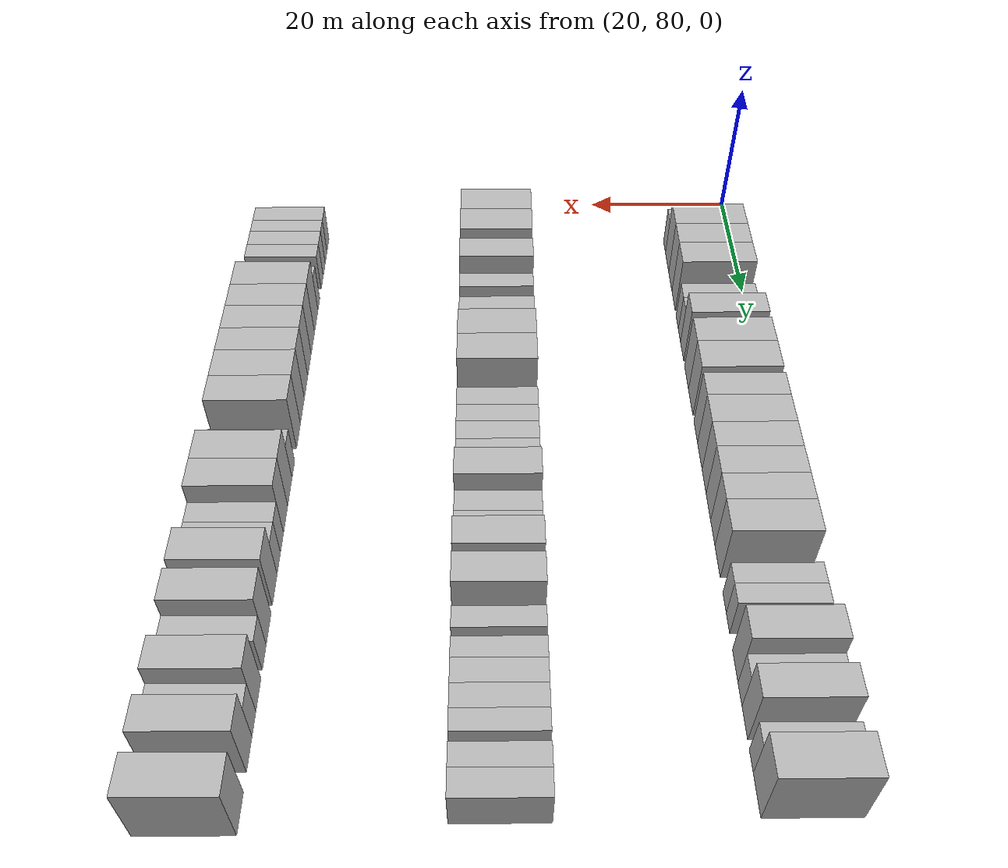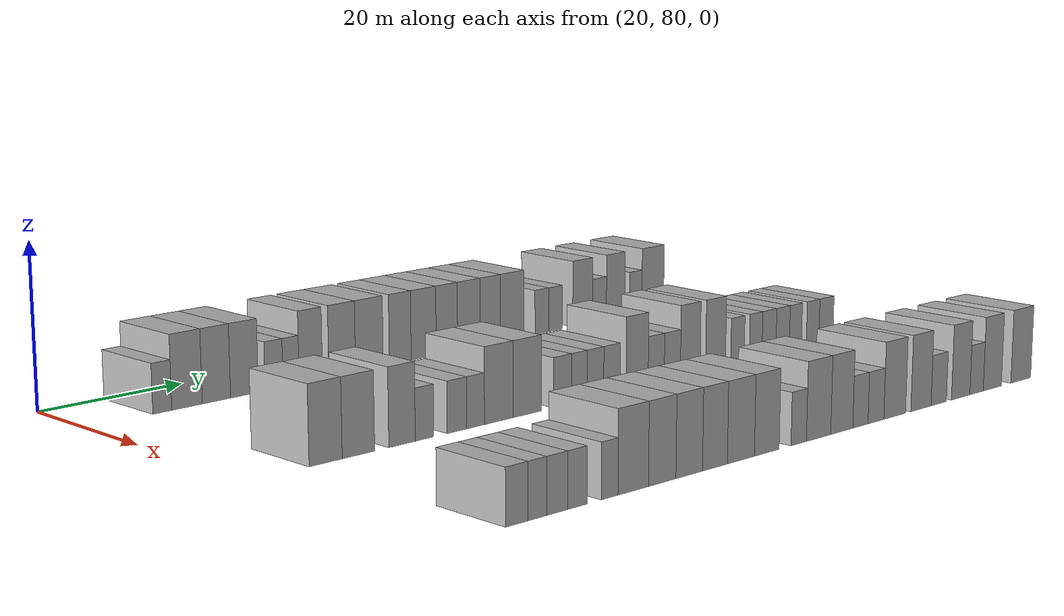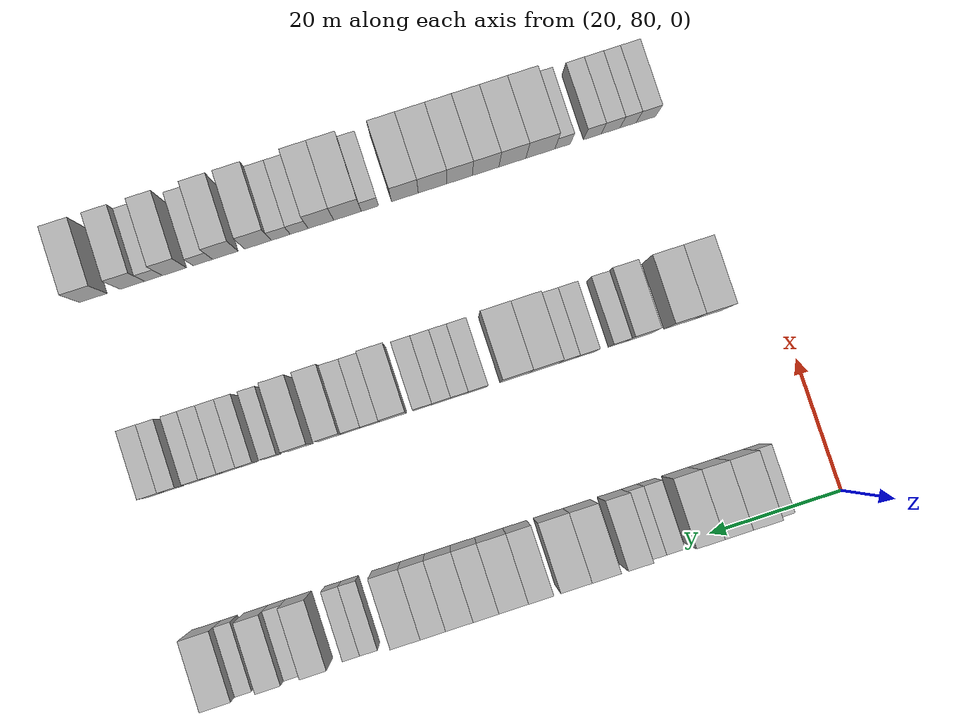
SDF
<sdf version="1.6">
 <world name="default">
  <model name="building_93">
   <static>1</static>
   <pose>25.0000 90.2426 0 0.000000 0.000000 0.000000</pose>
   <link name="link">
    <pose>0 0 3.00 0 0 0</pose>
    <collision name="collision"><geometry><box><size>10.0000 2.6197 6.0000</size></box></geometry></collision>
    <visual name="visual">
     <cast_shadows>0</cast_shadows>
     <geometry><box><size>10.0000 2.6197 6.0000</size></box></geometry>
     <material>
      <script>
       <uri>model://HANNAS_wall/materials/scripts</uri>
       <uri>model://HANNAS_wall/materials/textures</uri>
       <name>vrc/HANNAS_wall</name>
      </script>
     </material>
    </visual>
   </link>
  </model>
  <model name="building_94">
   <static>1</static>
   <pose>25.0000 93.7012 0 0.000000 0.000000 0.000000</pose>
   <link name="link">
    <pose>0 0 4.50 0 0 0</pose>
    <collision name="collision"><geometry><box><size>10.0000 4.2974 9.0000</size></box></geometry></collision>
    <visual name="visual">
     <cast_shadows>0</cast_shadows>
     <geometry><box><size>10.0000 4.2974 9.0000</size></box></geometry>
     <material>
      <script>
       <uri>model://HANNAS_wall/materials/scripts</uri>
       <uri>model://HANNAS_wall/materials/textures</uri>
       <name>vrc/HANNAS_wall</name>
      </script>
     </material>
    </visual>
   </link>
  </model>
  <model name="building_95">
   <static>1</static>
   <pose>25.0000 97.8898 0 0.000000 0.000000 0.000000</pose>
   <link name="link">
    <pose>0 0 4.50 0 0 0</pose>
    <collision name="collision"><geometry><box><size>10.0000 4.0798 9.0000</size></box></geometry></collision>
    <visual name="visual">
     <cast_shadows>0</cast_shadows>
     <geometry><box><size>10.0000 4.0798 9.0000</size></box></geometry>
     <material>
      <script>
       <uri>model://HANNAS_wall/materials/scripts</uri>
       <uri>model://HANNAS_wall/materials/textures</uri>
       <name>vrc/HANNAS_wall</name>
      </script>
     </material>
    </visual>
   </link>
  </model>
  <model name="building_96">
   <static>1</static>
   <pose>25.0000 101.9727 0 0.000000 0.000000 0.000000</pose>
   <link name="link">
    <pose>0 0 4.50 0 0 0</pose>
    <collision name="collision"><geometry><box><size>10.0000 4.0860 9.0000</size></box></geometry></collision>
    <visual name="visual">
     <cast_shadows>0</cast_shadows>
     <geometry><box><size>10.0000 4.0860 9.0000</size></box></geometry>
     <material>
      <script>
       <uri>model://HANNAS_wall/materials/scripts</uri>
       <uri>model://HANNAS_wall/materials/textures</uri>
       <name>vrc/HANNAS_wall</name>
      </script>
     </material>
    </visual>
   </link>
  </model>
  <model name="building_97">
   <static>1</static>
   <pose>25.0000 106.3597 0 0.000000 0.000000 0.000000</pose>
   <link name="link">
    <pose>0 0 3.00 0 0 0</pose>
    <collision name="collision"><geometry><box><size>10.0000 2.6880 6.0000</size></box></geometry></collision>
    <visual name="visual">
     <cast_shadows>0</cast_shadows>
     <geometry><box><size>10.0000 2.6880 6.0000</size></box></geometry>
     <material>
      <script>
       <uri>model://HANNAS_wall/materials/scripts</uri>
       <uri>model://HANNAS_wall/materials/textures</uri>
       <name>vrc/HANNAS_wall</name>
      </script>
     </material>
    </visual>
   </link>
  </model>
  <model name="building_98">
   <static>1</static>
   <pose>25.0000 108.9286 0 0.000000 0.000000 0.000000</pose>
   <link name="link">
    <pose>0 0 3.00 0 0 0</pose>
    <collision name="collision"><geometry><box><size>10.0000 2.4498 6.0000</size></box></geometry></collision>
    <visual name="visual">
     <cast_shadows>0</cast_shadows>
     <geometry><box><size>10.0000 2.4498 6.0000</size></box></geometry>
     <material>
      <script>
       <uri>model://HANNAS_wall/materials/scripts</uri>
       <uri>model://HANNAS_wall/materials/textures</uri>
       <name>vrc/HANNAS_wall</name>
      </script>
     </material>
    </visual>
   </link>
  </model>
  <model name="building_99">
   <static>1</static>
   <pose>25.0000 111.9615 0 0.000000 0.000000 0.000000</pose>
   <link name="link">
    <pose>0 0 4.50 0 0 0</pose>
    <collision name="collision"><geometry><box><size>10.0000 3.6160 9.0000</size></box></geometry></collision>
    <visual name="visual">
     <cast_shadows>0</cast_shadows>
     <geometry><box><size>10.0000 3.6160 9.0000</size></box></geometry>
     <material>
      <script>
       <uri>model://HANNAS_wall/materials/scripts</uri>
       <uri>model://HANNAS_wall/materials/textures</uri>
       <name>vrc/HANNAS_wall</name>
      </script>
     </material>
    </visual>
   </link>
  </model>
  <model name="building_100">
   <static>1</static>
   <pose>25.0000 116.8692 0 0.000000 0.000000 0.000000</pose>
   <link name="link">
    <pose>0 0 4.50 0 0 0</pose>
    <collision name="collision"><geometry><box><size>10.0000 4.1995 9.0000</size></box></geometry></collision>
    <visual name="visual">
     <cast_shadows>0</cast_shadows>
     <geometry><box><size>10.0000 4.1995 9.0000</size></box></geometry>
     <material>
      <script>
       <uri>model://HANNAS_wall/materials/scripts</uri>
       <uri>model://HANNAS_wall/materials/textures</uri>
       <name>vrc/HANNAS_wall</name>
      </script>
     </material>
    </visual>
   </link>
  </model>
  <model name="building_101">
   <static>1</static>
   <pose>25.0000 121.2153 0 0.000000 0.000000 0.000000</pose>
   <link name="link">
    <pose>0 0 4.50 0 0 0</pose>
    <collision name="collision"><geometry><box><size>10.0000 4.4926 9.0000</size></box></geometry></collision>
    <visual name="visual">
     <cast_shadows>0</cast_shadows>
     <geometry><box><size>10.0000 4.4926 9.0000</size></box></geometry>
     <material>
      <script>
       <uri>model://HANNAS_wall/materials/scripts</uri>
       <uri>model://HANNAS_wall/materials/textures</uri>
       <name>vrc/HANNAS_wall</name>
      </script>
     </material>
    </visual>
   </link>
  </model>
  <model name="building_102">
   <static>1</static>
   <pose>25.0000 126.2646 0 0.000000 0.000000 0.000000</pose>
   <link name="link">
    <pose>0 0 4.50 0 0 0</pose>
    <collision name="collision"><geometry><box><size>10.0000 3.6060 9.0000</size></box></geometry></collision>
    <visual name="visual">
     <cast_shadows>0</cast_shadows>
     <geometry><box><size>10.0000 3.6060 9.0000</size></box></geometry>
     <material>
      <script>
       <uri>model://HANNAS_wall/materials/scripts</uri>
       <uri>model://HANNAS_wall/materials/textures</uri>
       <name>vrc/HANNAS_wall</name>
      </script>
     </material>
    </visual>
   </link>
  </model>
  <model name="building_103">
   <static>1</static>
   <pose>25.0000 130.1817 0 0.000000 0.000000 0.000000</pose>
   <link name="link">
    <pose>0 0 4.50 0 0 0</pose>
    <collision name="collision"><geometry><box><size>10.0000 4.2282 9.0000</size></box></geometry></collision>
    <visual name="visual">
     <cast_shadows>0</cast_shadows>
     <geometry><box><size>10.0000 4.2282 9.0000</size></box></geometry>
     <material>
      <script>
       <uri>model://HANNAS_wall/materials/scripts</uri>
       <uri>model://HANNAS_wall/materials/textures</uri>
       <name>vrc/HANNAS_wall</name>
      </script>
     </material>
    </visual>
   </link>
  </model>
  <model name="building_104">
   <static>1</static>
   <pose>25.0000 134.1335 0 0.000000 0.000000 0.000000</pose>
   <link name="link">
    <pose>0 0 4.50 0 0 0</pose>
    <collision name="collision"><geometry><box><size>10.0000 3.6755 9.0000</size></box></geometry></collision>
    <visual name="visual">
     <cast_shadows>0</cast_shadows>
     <geometry><box><size>10.0000 3.6755 9.0000</size></box></geometry>
     <material>
      <script>
       <uri>model://HANNAS_wall/materials/scripts</uri>
       <uri>model://HANNAS_wall/materials/textures</uri>
       <name>vrc/HANNAS_wall</name>
      </script>
     </material>
    </visual>
   </link>
  </model>
  <model name="building_105">
   <static>1</static>
   <pose>25.0000 137.9393 0 0.000000 0.000000 0.000000</pose>
   <link name="link">
    <pose>0 0 4.50 0 0 0</pose>
    <collision name="collision"><geometry><box><size>10.0000 3.9360 9.0000</size></box></geometry></collision>
    <visual name="visual">
     <cast_shadows>0</cast_shadows>
     <geometry><box><size>10.0000 3.9360 9.0000</size></box></geometry>
     <material>
      <script>
       <uri>model://HANNAS_wall/materials/scripts</uri>
       <uri>model://HANNAS_wall/materials/textures</uri>
       <name>vrc/HANNAS_wall</name>
      </script>
     </material>
    </visual>
   </link>
  </model>
  <model name="building_106">
   <static>1</static>
   <pose>25.0000 141.7201 0 0.000000 0.000000 0.000000</pose>
   <link name="link">
    <pose>0 0 4.50 0 0 0</pose>
    <collision name="collision"><geometry><box><size>10.0000 3.6256 9.0000</size></box></geometry></collision>
    <visual name="visual">
     <cast_shadows>0</cast_shadows>
     <geometry><box><size>10.0000 3.6256 9.0000</size></box></geometry>
     <material>
      <script>
       <uri>model://HANNAS_wall/materials/scripts</uri>
       <uri>model://HANNAS_wall/materials/textures</uri>
       <name>vrc/HANNAS_wall</name>
      </script>
     </material>
    </visual>
   </link>
  </model>
  <model name="building_107">
   <static>1</static>
   <pose>25.0000 145.6723 0 0.000000 0.000000 0.000000</pose>
   <link name="link">
    <pose>0 0 4.50 0 0 0</pose>
    <collision name="collision"><geometry><box><size>10.0000 4.2788 9.0000</size></box></geometry></collision>
    <visual name="visual">
     <cast_shadows>0</cast_shadows>
     <geometry><box><size>10.0000 4.2788 9.0000</size></box></geometry>
     <material>
      <script>
       <uri>model://HANNAS_wall/materials/scripts</uri>
       <uri>model://HANNAS_wall/materials/textures</uri>
       <name>vrc/HANNAS_wall</name>
      </script>
     </material>
    </visual>
   </link>
  </model>
  <model name="building_108">
   <static>1</static>
   <pose>25.0000 151.1024 0 0.000000 0.000000 0.000000</pose>
   <link name="link">
    <pose>0 0 3.00 0 0 0</pose>
    <collision name="collision"><geometry><box><size>10.0000 2.5815 6.0000</size></box></geometry></collision>
    <visual name="visual">
     <cast_shadows>0</cast_shadows>
     <geometry><box><size>10.0000 2.5815 6.0000</size></box></geometry>
     <material>
      <script>
       <uri>model://HANNAS_wall/materials/scripts</uri>
       <uri>model://HANNAS_wall/materials/textures</uri>
       <name>vrc/HANNAS_wall</name>
      </script>
     </material>
    </visual>
   </link>
  </model>
  <model name="building_109">
   <static>1</static>
   <pose>25.0000 153.6370 0 0.000000 0.000000 0.000000</pose>
   <link name="link">
    <pose>0 0 3.00 0 0 0</pose>
    <collision name="collision"><geometry><box><size>10.0000 2.4877 6.0000</size></box></geometry></collision>
    <visual name="visual">
     <cast_shadows>0</cast_shadows>
     <geometry><box><size>10.0000 2.4877 6.0000</size></box></geometry>
     <material>
      <script>
       <uri>model://HANNAS_wall/materials/scripts</uri>
       <uri>model://HANNAS_wall/materials/textures</uri>
       <name>vrc/HANNAS_wall</name>
      </script>
     </material>
    </visual>
   </link>
  </model>
  <model name="building_110">
   <static>1</static>
   <pose>25.0000 158.7950 0 0.000000 0.000000 0.000000</pose>
   <link name="link">
    <pose>0 0 4.50 0 0 0</pose>
    <collision name="collision"><geometry><box><size>10.0000 3.8283 9.0000</size></box></geometry></collision>
    <visual name="visual">
     <cast_shadows>0</cast_shadows>
     <geometry><box><size>10.0000 3.8283 9.0000</size></box></geometry>
     <material>
      <script>
       <uri>model://HANNAS_wall/materials/scripts</uri>
       <uri>model://HANNAS_wall/materials/textures</uri>
       <name>vrc/HANNAS_wall</name>
      </script>
     </material>
    </visual>
   </link>
  </model>
  <model name="building_111">
   <static>1</static>
   <pose>25.0000 162.0467 0 0.000000 0.000000 0.000000</pose>
   <link name="link">
    <pose>0 0 3.00 0 0 0</pose>
    <collision name="collision"><geometry><box><size>10.0000 2.6752 6.0000</size></box></geometry></collision>
    <visual name="visual">
     <cast_shadows>0</cast_shadows>
     <geometry><box><size>10.0000 2.6752 6.0000</size></box></geometry>
     <material>
      <script>
       <uri>model://HANNAS_wall/materials/scripts</uri>
       <uri>model://HANNAS_wall/materials/textures</uri>
       <name>vrc/HANNAS_wall</name>
      </script>
     </material>
    </visual>
   </link>
  </model>
  <model name="building_112">
   <static>1</static>
   <pose>25.0000 165.1947 0 0.000000 0.000000 0.000000</pose>
   <link name="link">
    <pose>0 0 4.50 0 0 0</pose>
    <collision name="collision"><geometry><box><size>10.0000 3.6208 9.0000</size></box></geometry></collision>
    <visual name="visual">
     <cast_shadows>0</cast_shadows>
     <geometry><box><size>10.0000 3.6208 9.0000</size></box></geometry>
     <material>
      <script>
       <uri>model://HANNAS_wall/materials/scripts</uri>
       <uri>model://HANNAS_wall/materials/textures</uri>
       <name>vrc/HANNAS_wall</name>
      </script>
     </material>
    </visual>
   </link>
  </model>
  <model name="building_113">
   <static>1</static>
   <pose>25.0000 169.2252 0 0.000000 0.000000 0.000000</pose>
   <link name="link">
    <pose>0 0 3.00 0 0 0</pose>
    <collision name="collision"><geometry><box><size>10.0000 2.4401 6.0000</size></box></geometry></collision>
    <visual name="visual">
     <cast_shadows>0</cast_shadows>
     <geometry><box><size>10.0000 2.4401 6.0000</size></box></geometry>
     <material>
      <script>
       <uri>model://HANNAS_wall/materials/scripts</uri>
       <uri>model://HANNAS_wall/materials/textures</uri>
       <name>vrc/HANNAS_wall</name>
      </script>
     </material>
    </visual>
   </link>
  </model>
  <model name="building_114">
   <static>1</static>
   <pose>25.0000 172.6649 0 0.000000 0.000000 0.000000</pose>
   <link name="link">
    <pose>0 0 4.50 0 0 0</pose>
    <collision name="collision"><geometry><box><size>10.0000 4.4392 9.0000</size></box></geometry></collision>
    <visual name="visual">
     <cast_shadows>0</cast_shadows>
     <geometry><box><size>10.0000 4.4392 9.0000</size></box></geometry>
     <material>
      <script>
       <uri>model://HANNAS_wall/materials/scripts</uri>
       <uri>model://HANNAS_wall/materials/textures</uri>
       <name>vrc/HANNAS_wall</name>
      </script>
     </material>
    </visual>
   </link>
  </model>
  <model name="building_228">
   <static>1</static>
   <pose>55.0000 90.1496 0 0.000000 0.000000 0.000000</pose>
   <link name="link">
    <pose>0 0 4.50 0 0 0</pose>
    <collision name="collision"><geometry><box><size>10.0000 4.4806 9.0000</size></box></geometry></collision>
    <visual name="visual">
     <cast_shadows>0</cast_shadows>
     <geometry><box><size>10.0000 4.4806 9.0000</size></box></geometry>
     <material>
      <script>
       <uri>model://HANNAS_wall/materials/scripts</uri>
       <uri>model://HANNAS_wall/materials/textures</uri>
       <name>vrc/HANNAS_wall</name>
      </script>
     </material>
    </visual>
   </link>
  </model>
  <model name="building_229">
   <static>1</static>
   <pose>55.0000 94.6384 0 0.000000 0.000000 0.000000</pose>
   <link name="link">
    <pose>0 0 4.50 0 0 0</pose>
    <collision name="collision"><geometry><box><size>10.0000 4.4970 9.0000</size></box></geometry></collision>
    <visual name="visual">
     <cast_shadows>0</cast_shadows>
     <geometry><box><size>10.0000 4.4970 9.0000</size></box></geometry>
     <material>
      <script>
       <uri>model://HANNAS_wall/materials/scripts</uri>
       <uri>model://HANNAS_wall/materials/textures</uri>
       <name>vrc/HANNAS_wall</name>
      </script>
     </material>
    </visual>
   </link>
  </model>
  <model name="building_230">
   <static>1</static>
   <pose>55.0000 100.7871 0 0.000000 0.000000 0.000000</pose>
   <link name="link">
    <pose>0 0 4.50 0 0 0</pose>
    <collision name="collision"><geometry><box><size>10.0000 3.8002 9.0000</size></box></geometry></collision>
    <visual name="visual">
     <cast_shadows>0</cast_shadows>
     <geometry><box><size>10.0000 3.8002 9.0000</size></box></geometry>
     <material>
      <script>
       <uri>model://HANNAS_wall/materials/scripts</uri>
       <uri>model://HANNAS_wall/materials/textures</uri>
       <name>vrc/HANNAS_wall</name>
      </script>
     </material>
    </visual>
   </link>
  </model>
  <model name="building_231">
   <static>1</static>
   <pose>55.0000 104.0326 0 0.000000 0.000000 0.000000</pose>
   <link name="link">
    <pose>0 0 3.00 0 0 0</pose>
    <collision name="collision"><geometry><box><size>10.0000 2.6907 6.0000</size></box></geometry></collision>
    <visual name="visual">
     <cast_shadows>0</cast_shadows>
     <geometry><box><size>10.0000 2.6907 6.0000</size></box></geometry>
     <material>
      <script>
       <uri>model://HANNAS_wall/materials/scripts</uri>
       <uri>model://HANNAS_wall/materials/textures</uri>
       <name>vrc/HANNAS_wall</name>
      </script>
     </material>
    </visual>
   </link>
  </model>
  <model name="building_232">
   <static>1</static>
   <pose>55.0000 108.8431 0 0.000000 0.000000 0.000000</pose>
   <link name="link">
    <pose>0 0 3.00 0 0 0</pose>
    <collision name="collision"><geometry><box><size>10.0000 2.9304 6.0000</size></box></geometry></collision>
    <visual name="visual">
     <cast_shadows>0</cast_shadows>
     <geometry><box><size>10.0000 2.9304 6.0000</size></box></geometry>
     <material>
      <script>
       <uri>model://HANNAS_wall/materials/scripts</uri>
       <uri>model://HANNAS_wall/materials/textures</uri>
       <name>vrc/HANNAS_wall</name>
      </script>
     </material>
    </visual>
   </link>
  </model>
  <model name="building_233">
   <static>1</static>
   <pose>55.0000 111.6574 0 0.000000 0.000000 0.000000</pose>
   <link name="link">
    <pose>0 0 3.00 0 0 0</pose>
    <collision name="collision"><geometry><box><size>10.0000 2.6982 6.0000</size></box></geometry></collision>
    <visual name="visual">
     <cast_shadows>0</cast_shadows>
     <geometry><box><size>10.0000 2.6982 6.0000</size></box></geometry>
     <material>
      <script>
       <uri>model://HANNAS_wall/materials/scripts</uri>
       <uri>model://HANNAS_wall/materials/textures</uri>
       <name>vrc/HANNAS_wall</name>
      </script>
     </material>
    </visual>
   </link>
  </model>
  <model name="building_234">
   <static>1</static>
   <pose>55.0000 115.2255 0 0.000000 0.000000 0.000000</pose>
   <link name="link">
    <pose>0 0 4.50 0 0 0</pose>
    <collision name="collision"><geometry><box><size>10.0000 4.4379 9.0000</size></box></geometry></collision>
    <visual name="visual">
     <cast_shadows>0</cast_shadows>
     <geometry><box><size>10.0000 4.4379 9.0000</size></box></geometry>
     <material>
      <script>
       <uri>model://HANNAS_wall/materials/scripts</uri>
       <uri>model://HANNAS_wall/materials/textures</uri>
       <name>vrc/HANNAS_wall</name>
      </script>
     </material>
    </visual>
   </link>
  </model>
  <model name="building_235">
   <static>1</static>
   <pose>55.0000 119.6730 0 0.000000 0.000000 0.000000</pose>
   <link name="link">
    <pose>0 0 4.50 0 0 0</pose>
    <collision name="collision"><geometry><box><size>10.0000 4.4572 9.0000</size></box></geometry></collision>
    <visual name="visual">
     <cast_shadows>0</cast_shadows>
     <geometry><box><size>10.0000 4.4572 9.0000</size></box></geometry>
     <material>
      <script>
       <uri>model://HANNAS_wall/materials/scripts</uri>
       <uri>model://HANNAS_wall/materials/textures</uri>
       <name>vrc/HANNAS_wall</name>
      </script>
     </material>
    </visual>
   </link>
  </model>
  <model name="building_236">
   <static>1</static>
   <pose>55.0000 125.3591 0 0.000000 0.000000 0.000000</pose>
   <link name="link">
    <pose>0 0 3.00 0 0 0</pose>
    <collision name="collision"><geometry><box><size>10.0000 2.9148 6.0000</size></box></geometry></collision>
    <visual name="visual">
     <cast_shadows>0</cast_shadows>
     <geometry><box><size>10.0000 2.9148 6.0000</size></box></geometry>
     <material>
      <script>
       <uri>model://HANNAS_wall/materials/scripts</uri>
       <uri>model://HANNAS_wall/materials/textures</uri>
       <name>vrc/HANNAS_wall</name>
      </script>
     </material>
    </visual>
   </link>
  </model>
  <model name="building_237">
   <static>1</static>
   <pose>55.0000 128.1141 0 0.000000 0.000000 0.000000</pose>
   <link name="link">
    <pose>0 0 3.00 0 0 0</pose>
    <collision name="collision"><geometry><box><size>10.0000 2.5953 6.0000</size></box></geometry></collision>
    <visual name="visual">
     <cast_shadows>0</cast_shadows>
     <geometry><box><size>10.0000 2.5953 6.0000</size></box></geometry>
     <material>
      <script>
       <uri>model://HANNAS_wall/materials/scripts</uri>
       <uri>model://HANNAS_wall/materials/textures</uri>
       <name>vrc/HANNAS_wall</name>
      </script>
     </material>
    </visual>
   </link>
  </model>
  <model name="building_238">
   <static>1</static>
   <pose>55.0000 130.8022 0 0.000000 0.000000 0.000000</pose>
   <link name="link">
    <pose>0 0 3.00 0 0 0</pose>
    <collision name="collision"><geometry><box><size>10.0000 2.7808 6.0000</size></box></geometry></collision>
    <visual name="visual">
     <cast_shadows>0</cast_shadows>
     <geometry><box><size>10.0000 2.7808 6.0000</size></box></geometry>
     <material>
      <script>
       <uri>model://HANNAS_wall/materials/scripts</uri>
       <uri>model://HANNAS_wall/materials/textures</uri>
       <name>vrc/HANNAS_wall</name>
      </script>
     </material>
    </visual>
   </link>
  </model>
  <model name="building_239">
   <static>1</static>
   <pose>55.0000 133.6105 0 0.000000 0.000000 0.000000</pose>
   <link name="link">
    <pose>0 0 3.00 0 0 0</pose>
    <collision name="collision"><geometry><box><size>10.0000 2.8358 6.0000</size></box></geometry></collision>
    <visual name="visual">
     <cast_shadows>0</cast_shadows>
     <geometry><box><size>10.0000 2.8358 6.0000</size></box></geometry>
     <material>
      <script>
       <uri>model://HANNAS_wall/materials/scripts</uri>
       <uri>model://HANNAS_wall/materials/textures</uri>
       <name>vrc/HANNAS_wall</name>
      </script>
     </material>
    </visual>
   </link>
  </model>
  <model name="building_240">
   <static>1</static>
   <pose>55.0000 137.9510 0 0.000000 0.000000 0.000000</pose>
   <link name="link">
    <pose>0 0 4.50 0 0 0</pose>
    <collision name="collision"><geometry><box><size>10.0000 3.8452 9.0000</size></box></geometry></collision>
    <visual name="visual">
     <cast_shadows>0</cast_shadows>
     <geometry><box><size>10.0000 3.8452 9.0000</size></box></geometry>
     <material>
      <script>
       <uri>model://HANNAS_wall/materials/scripts</uri>
       <uri>model://HANNAS_wall/materials/textures</uri>
       <name>vrc/HANNAS_wall</name>
      </script>
     </material>
    </visual>
   </link>
  </model>
  <model name="building_241">
   <static>1</static>
   <pose>55.0000 141.3032 0 0.000000 0.000000 0.000000</pose>
   <link name="link">
    <pose>0 0 3.00 0 0 0</pose>
    <collision name="collision"><geometry><box><size>10.0000 2.8592 6.0000</size></box></geometry></collision>
    <visual name="visual">
     <cast_shadows>0</cast_shadows>
     <geometry><box><size>10.0000 2.8592 6.0000</size></box></geometry>
     <material>
      <script>
       <uri>model://HANNAS_wall/materials/scripts</uri>
       <uri>model://HANNAS_wall/materials/textures</uri>
       <name>vrc/HANNAS_wall</name>
      </script>
     </material>
    </visual>
   </link>
  </model>
  <model name="building_242">
   <static>1</static>
   <pose>55.0000 144.1785 0 0.000000 0.000000 0.000000</pose>
   <link name="link">
    <pose>0 0 3.00 0 0 0</pose>
    <collision name="collision"><geometry><box><size>10.0000 2.8914 6.0000</size></box></geometry></collision>
    <visual name="visual">
     <cast_shadows>0</cast_shadows>
     <geometry><box><size>10.0000 2.8914 6.0000</size></box></geometry>
     <material>
      <script>
       <uri>model://HANNAS_wall/materials/scripts</uri>
       <uri>model://HANNAS_wall/materials/textures</uri>
       <name>vrc/HANNAS_wall</name>
      </script>
     </material>
    </visual>
   </link>
  </model>
  <model name="building_243">
   <static>1</static>
   <pose>55.0000 147.4254 0 0.000000 0.000000 0.000000</pose>
   <link name="link">
    <pose>0 0 4.50 0 0 0</pose>
    <collision name="collision"><geometry><box><size>10.0000 3.6023 9.0000</size></box></geometry></collision>
    <visual name="visual">
     <cast_shadows>0</cast_shadows>
     <geometry><box><size>10.0000 3.6023 9.0000</size></box></geometry>
     <material>
      <script>
       <uri>model://HANNAS_wall/materials/scripts</uri>
       <uri>model://HANNAS_wall/materials/textures</uri>
       <name>vrc/HANNAS_wall</name>
      </script>
     </material>
    </visual>
   </link>
  </model>
  <model name="building_244">
   <static>1</static>
   <pose>55.0000 152.0876 0 0.000000 0.000000 0.000000</pose>
   <link name="link">
    <pose>0 0 4.50 0 0 0</pose>
    <collision name="collision"><geometry><box><size>10.0000 3.7222 9.0000</size></box></geometry></collision>
    <visual name="visual">
     <cast_shadows>0</cast_shadows>
     <geometry><box><size>10.0000 3.7222 9.0000</size></box></geometry>
     <material>
      <script>
       <uri>model://HANNAS_wall/materials/scripts</uri>
       <uri>model://HANNAS_wall/materials/textures</uri>
       <name>vrc/HANNAS_wall</name>
      </script>
     </material>
    </visual>
   </link>
  </model>
  <model name="building_245">
   <static>1</static>
   <pose>55.0000 156.2268 0 0.000000 0.000000 0.000000</pose>
   <link name="link">
    <pose>0 0 3.00 0 0 0</pose>
    <collision name="collision"><geometry><box><size>10.0000 2.5563 6.0000</size></box></geometry></collision>
    <visual name="visual">
     <cast_shadows>0</cast_shadows>
     <geometry><box><size>10.0000 2.5563 6.0000</size></box></geometry>
     <material>
      <script>
       <uri>model://HANNAS_wall/materials/scripts</uri>
       <uri>model://HANNAS_wall/materials/textures</uri>
       <name>vrc/HANNAS_wall</name>
      </script>
     </material>
    </visual>
   </link>
  </model>
  <model name="building_246">
   <static>1</static>
   <pose>55.0000 159.7263 0 0.000000 0.000000 0.000000</pose>
   <link name="link">
    <pose>0 0 3.00 0 0 0</pose>
    <collision name="collision"><geometry><box><size>10.0000 2.4425 6.0000</size></box></geometry></collision>
    <visual name="visual">
     <cast_shadows>0</cast_shadows>
     <geometry><box><size>10.0000 2.4425 6.0000</size></box></geometry>
     <material>
      <script>
       <uri>model://HANNAS_wall/materials/scripts</uri>
       <uri>model://HANNAS_wall/materials/textures</uri>
       <name>vrc/HANNAS_wall</name>
      </script>
     </material>
    </visual>
   </link>
  </model>
  <model name="building_247">
   <static>1</static>
   <pose>55.0000 162.3190 0 0.000000 0.000000 0.000000</pose>
   <link name="link">
    <pose>0 0 3.00 0 0 0</pose>
    <collision name="collision"><geometry><box><size>10.0000 2.7430 6.0000</size></box></geometry></collision>
    <visual name="visual">
     <cast_shadows>0</cast_shadows>
     <geometry><box><size>10.0000 2.7430 6.0000</size></box></geometry>
     <material>
      <script>
       <uri>model://HANNAS_wall/materials/scripts</uri>
       <uri>model://HANNAS_wall/materials/textures</uri>
       <name>vrc/HANNAS_wall</name>
      </script>
     </material>
    </visual>
   </link>
  </model>
  <model name="building_248">
   <static>1</static>
   <pose>55.0000 165.0215 0 0.000000 0.000000 0.000000</pose>
   <link name="link">
    <pose>0 0 3.00 0 0 0</pose>
    <collision name="collision"><geometry><box><size>10.0000 2.6620 6.0000</size></box></geometry></collision>
    <visual name="visual">
     <cast_shadows>0</cast_shadows>
     <geometry><box><size>10.0000 2.6620 6.0000</size></box></geometry>
     <material>
      <script>
       <uri>model://HANNAS_wall/materials/scripts</uri>
       <uri>model://HANNAS_wall/materials/textures</uri>
       <name>vrc/HANNAS_wall</name>
      </script>
     </material>
    </visual>
   </link>
  </model>
  <model name="building_249">
   <static>1</static>
   <pose>55.0000 167.5645 0 0.000000 0.000000 0.000000</pose>
   <link name="link">
    <pose>0 0 3.00 0 0 0</pose>
    <collision name="collision"><geometry><box><size>10.0000 2.4240 6.0000</size></box></geometry></collision>
    <visual name="visual">
     <cast_shadows>0</cast_shadows>
     <geometry><box><size>10.0000 2.4240 6.0000</size></box></geometry>
     <material>
      <script>
       <uri>model://HANNAS_wall/materials/scripts</uri>
       <uri>model://HANNAS_wall/materials/textures</uri>
       <name>vrc/HANNAS_wall</name>
      </script>
     </material>
    </visual>
   </link>
  </model>
  <model name="building_250">
   <static>1</static>
   <pose>55.0000 171.0565 0 0.000000 0.000000 0.000000</pose>
   <link name="link">
    <pose>0 0 3.00 0 0 0</pose>
    <collision name="collision"><geometry><box><size>10.0000 2.5600 6.0000</size></box></geometry></collision>
    <visual name="visual">
     <cast_shadows>0</cast_shadows>
     <geometry><box><size>10.0000 2.5600 6.0000</size></box></geometry>
     <material>
      <script>
       <uri>model://HANNAS_wall/materials/scripts</uri>
       <uri>model://HANNAS_wall/materials/textures</uri>
       <name>vrc/HANNAS_wall</name>
      </script>
     </material>
    </visual>
   </link>
  </model>
  <model name="building_251">
   <static>1</static>
   <pose>55.0000 173.7946 0 0.000000 0.000000 0.000000</pose>
   <link name="link">
    <pose>0 0 3.00 0 0 0</pose>
    <collision name="collision"><geometry><box><size>10.0000 2.9161 6.0000</size></box></geometry></collision>
    <visual name="visual">
     <cast_shadows>0</cast_shadows>
     <geometry><box><size>10.0000 2.9161 6.0000</size></box></geometry>
     <material>
      <script>
       <uri>model://HANNAS_wall/materials/scripts</uri>
       <uri>model://HANNAS_wall/materials/textures</uri>
       <name>vrc/HANNAS_wall</name>
      </script>
     </material>
    </visual>
   </link>
  </model>
  <model name="building_365">
   <static>1</static>
   <pose>85.0000 89.5712 0 0.000000 0.000000 0.000000</pose>
   <link name="link">
    <pose>0 0 3.00 0 0 0</pose>
    <collision name="collision"><geometry><box><size>10.0000 2.9950 6.0000</size></box></geometry></collision>
    <visual name="visual">
     <cast_shadows>0</cast_shadows>
     <geometry><box><size>10.0000 2.9950 6.0000</size></box></geometry>
     <material>
      <script>
       <uri>model://HANNAS_wall/materials/scripts</uri>
       <uri>model://HANNAS_wall/materials/textures</uri>
       <name>vrc/HANNAS_wall</name>
      </script>
     </material>
    </visual>
   </link>
  </model>
  <model name="building_366">
   <static>1</static>
   <pose>85.0000 92.3243 0 0.000000 0.000000 0.000000</pose>
   <link name="link">
    <pose>0 0 3.00 0 0 0</pose>
    <collision name="collision"><geometry><box><size>10.0000 2.5112 6.0000</size></box></geometry></collision>
    <visual name="visual">
     <cast_shadows>0</cast_shadows>
     <geometry><box><size>10.0000 2.5112 6.0000</size></box></geometry>
     <material>
      <script>
       <uri>model://HANNAS_wall/materials/scripts</uri>
       <uri>model://HANNAS_wall/materials/textures</uri>
       <name>vrc/HANNAS_wall</name>
      </script>
     </material>
    </visual>
   </link>
  </model>
  <model name="building_367">
   <static>1</static>
   <pose>85.0000 95.0127 0 0.000000 0.000000 0.000000</pose>
   <link name="link">
    <pose>0 0 3.00 0 0 0</pose>
    <collision name="collision"><geometry><box><size>10.0000 2.8655 6.0000</size></box></geometry></collision>
    <visual name="visual">
     <cast_shadows>0</cast_shadows>
     <geometry><box><size>10.0000 2.8655 6.0000</size></box></geometry>
     <material>
      <script>
       <uri>model://HANNAS_wall/materials/scripts</uri>
       <uri>model://HANNAS_wall/materials/textures</uri>
       <name>vrc/HANNAS_wall</name>
      </script>
     </material>
    </visual>
   </link>
  </model>
  <model name="building_368">
   <static>1</static>
   <pose>85.0000 97.8212 0 0.000000 0.000000 0.000000</pose>
   <link name="link">
    <pose>0 0 3.00 0 0 0</pose>
    <collision name="collision"><geometry><box><size>10.0000 2.7516 6.0000</size></box></geometry></collision>
    <visual name="visual">
     <cast_shadows>0</cast_shadows>
     <geometry><box><size>10.0000 2.7516 6.0000</size></box></geometry>
     <material>
      <script>
       <uri>model://HANNAS_wall/materials/scripts</uri>
       <uri>model://HANNAS_wall/materials/textures</uri>
       <name>vrc/HANNAS_wall</name>
      </script>
     </material>
    </visual>
   </link>
  </model>
  <model name="building_369">
   <static>1</static>
   <pose>85.0000 102.3973 0 0.000000 0.000000 0.000000</pose>
   <link name="link">
    <pose>0 0 3.00 0 0 0</pose>
    <collision name="collision"><geometry><box><size>10.0000 2.4006 6.0000</size></box></geometry></collision>
    <visual name="visual">
     <cast_shadows>0</cast_shadows>
     <geometry><box><size>10.0000 2.4006 6.0000</size></box></geometry>
     <material>
      <script>
       <uri>model://HANNAS_wall/materials/scripts</uri>
       <uri>model://HANNAS_wall/materials/textures</uri>
       <name>vrc/HANNAS_wall</name>
      </script>
     </material>
    </visual>
   </link>
  </model>
  <model name="building_370">
   <static>1</static>
   <pose>85.0000 105.8332 0 0.000000 0.000000 0.000000</pose>
   <link name="link">
    <pose>0 0 4.50 0 0 0</pose>
    <collision name="collision"><geometry><box><size>10.0000 4.4712 9.0000</size></box></geometry></collision>
    <visual name="visual">
     <cast_shadows>0</cast_shadows>
     <geometry><box><size>10.0000 4.4712 9.0000</size></box></geometry>
     <material>
      <script>
       <uri>model://HANNAS_wall/materials/scripts</uri>
       <uri>model://HANNAS_wall/materials/textures</uri>
       <name>vrc/HANNAS_wall</name>
      </script>
     </material>
    </visual>
   </link>
  </model>
  <model name="building_371">
   <static>1</static>
   <pose>85.0000 110.1361 0 0.000000 0.000000 0.000000</pose>
   <link name="link">
    <pose>0 0 4.50 0 0 0</pose>
    <collision name="collision"><geometry><box><size>10.0000 4.1345 9.0000</size></box></geometry></collision>
    <visual name="visual">
     <cast_shadows>0</cast_shadows>
     <geometry><box><size>10.0000 4.1345 9.0000</size></box></geometry>
     <material>
      <script>
       <uri>model://HANNAS_wall/materials/scripts</uri>
       <uri>model://HANNAS_wall/materials/textures</uri>
       <name>vrc/HANNAS_wall</name>
      </script>
     </material>
    </visual>
   </link>
  </model>
  <model name="building_372">
   <static>1</static>
   <pose>85.0000 114.2499 0 0.000000 0.000000 0.000000</pose>
   <link name="link">
    <pose>0 0 4.50 0 0 0</pose>
    <collision name="collision"><geometry><box><size>10.0000 4.0931 9.0000</size></box></geometry></collision>
    <visual name="visual">
     <cast_shadows>0</cast_shadows>
     <geometry><box><size>10.0000 4.0931 9.0000</size></box></geometry>
     <material>
      <script>
       <uri>model://HANNAS_wall/materials/scripts</uri>
       <uri>model://HANNAS_wall/materials/textures</uri>
       <name>vrc/HANNAS_wall</name>
      </script>
     </material>
    </visual>
   </link>
  </model>
  <model name="building_373">
   <static>1</static>
   <pose>85.0000 118.2547 0 0.000000 0.000000 0.000000</pose>
   <link name="link">
    <pose>0 0 4.50 0 0 0</pose>
    <collision name="collision"><geometry><box><size>10.0000 3.9166 9.0000</size></box></geometry></collision>
    <visual name="visual">
     <cast_shadows>0</cast_shadows>
     <geometry><box><size>10.0000 3.9166 9.0000</size></box></geometry>
     <material>
      <script>
       <uri>model://HANNAS_wall/materials/scripts</uri>
       <uri>model://HANNAS_wall/materials/textures</uri>
       <name>vrc/HANNAS_wall</name>
      </script>
     </material>
    </visual>
   </link>
  </model>
  <model name="building_374">
   <static>1</static>
   <pose>85.0000 122.3971 0 0.000000 0.000000 0.000000</pose>
   <link name="link">
    <pose>0 0 4.50 0 0 0</pose>
    <collision name="collision"><geometry><box><size>10.0000 4.3681 9.0000</size></box></geometry></collision>
    <visual name="visual">
     <cast_shadows>0</cast_shadows>
     <geometry><box><size>10.0000 4.3681 9.0000</size></box></geometry>
     <material>
      <script>
       <uri>model://HANNAS_wall/materials/scripts</uri>
       <uri>model://HANNAS_wall/materials/textures</uri>
       <name>vrc/HANNAS_wall</name>
      </script>
     </material>
    </visual>
   </link>
  </model>
  <model name="building_375">
   <static>1</static>
   <pose>85.0000 126.6250 0 0.000000 0.000000 0.000000</pose>
   <link name="link">
    <pose>0 0 4.50 0 0 0</pose>
    <collision name="collision"><geometry><box><size>10.0000 4.0878 9.0000</size></box></geometry></collision>
    <visual name="visual">
     <cast_shadows>0</cast_shadows>
     <geometry><box><size>10.0000 4.0878 9.0000</size></box></geometry>
     <material>
      <script>
       <uri>model://HANNAS_wall/materials/scripts</uri>
       <uri>model://HANNAS_wall/materials/textures</uri>
       <name>vrc/HANNAS_wall</name>
      </script>
     </material>
    </visual>
   </link>
  </model>
  <model name="building_376">
   <static>1</static>
   <pose>85.0000 131.9807 0 0.000000 0.000000 0.000000</pose>
   <link name="link">
    <pose>0 0 3.00 0 0 0</pose>
    <collision name="collision"><geometry><box><size>10.0000 2.6235 6.0000</size></box></geometry></collision>
    <visual name="visual">
     <cast_shadows>0</cast_shadows>
     <geometry><box><size>10.0000 2.6235 6.0000</size></box></geometry>
     <material>
      <script>
       <uri>model://HANNAS_wall/materials/scripts</uri>
       <uri>model://HANNAS_wall/materials/textures</uri>
       <name>vrc/HANNAS_wall</name>
      </script>
     </material>
    </visual>
   </link>
  </model>
  <model name="building_377">
   <static>1</static>
   <pose>85.0000 135.4042 0 0.000000 0.000000 0.000000</pose>
   <link name="link">
    <pose>0 0 4.50 0 0 0</pose>
    <collision name="collision"><geometry><box><size>10.0000 4.2235 9.0000</size></box></geometry></collision>
    <visual name="visual">
     <cast_shadows>0</cast_shadows>
     <geometry><box><size>10.0000 4.2235 9.0000</size></box></geometry>
     <material>
      <script>
       <uri>model://HANNAS_wall/materials/scripts</uri>
       <uri>model://HANNAS_wall/materials/textures</uri>
       <name>vrc/HANNAS_wall</name>
      </script>
     </material>
    </visual>
   </link>
  </model>
  <model name="building_378">
   <static>1</static>
   <pose>85.0000 139.4709 0 0.000000 0.000000 0.000000</pose>
   <link name="link">
    <pose>0 0 4.50 0 0 0</pose>
    <collision name="collision"><geometry><box><size>10.0000 3.9100 9.0000</size></box></geometry></collision>
    <visual name="visual">
     <cast_shadows>0</cast_shadows>
     <geometry><box><size>10.0000 3.9100 9.0000</size></box></geometry>
     <material>
      <script>
       <uri>model://HANNAS_wall/materials/scripts</uri>
       <uri>model://HANNAS_wall/materials/textures</uri>
       <name>vrc/HANNAS_wall</name>
      </script>
     </material>
    </visual>
   </link>
  </model>
  <model name="building_379">
   <static>1</static>
   <pose>85.0000 142.8019 0 0.000000 0.000000 0.000000</pose>
   <link name="link">
    <pose>0 0 3.00 0 0 0</pose>
    <collision name="collision"><geometry><box><size>10.0000 2.7519 6.0000</size></box></geometry></collision>
    <visual name="visual">
     <cast_shadows>0</cast_shadows>
     <geometry><box><size>10.0000 2.7519 6.0000</size></box></geometry>
     <material>
      <script>
       <uri>model://HANNAS_wall/materials/scripts</uri>
       <uri>model://HANNAS_wall/materials/textures</uri>
       <name>vrc/HANNAS_wall</name>
      </script>
     </material>
    </visual>
   </link>
  </model>
  <model name="building_380">
   <static>1</static>
   <pose>85.0000 145.6232 0 0.000000 0.000000 0.000000</pose>
   <link name="link">
    <pose>0 0 3.00 0 0 0</pose>
    <collision name="collision"><geometry><box><size>10.0000 2.8907 6.0000</size></box></geometry></collision>
    <visual name="visual">
     <cast_shadows>0</cast_shadows>
     <geometry><box><size>10.0000 2.8907 6.0000</size></box></geometry>
     <material>
      <script>
       <uri>model://HANNAS_wall/materials/scripts</uri>
       <uri>model://HANNAS_wall/materials/textures</uri>
       <name>vrc/HANNAS_wall</name>
      </script>
     </material>
    </visual>
   </link>
  </model>
  <model name="building_381">
   <static>1</static>
   <pose>85.0000 149.1002 0 0.000000 0.000000 0.000000</pose>
   <link name="link">
    <pose>0 0 4.50 0 0 0</pose>
    <collision name="collision"><geometry><box><size>10.0000 4.0633 9.0000</size></box></geometry></collision>
    <visual name="visual">
     <cast_shadows>0</cast_shadows>
     <geometry><box><size>10.0000 4.0633 9.0000</size></box></geometry>
     <material>
      <script>
       <uri>model://HANNAS_wall/materials/scripts</uri>
       <uri>model://HANNAS_wall/materials/textures</uri>
       <name>vrc/HANNAS_wall</name>
      </script>
     </material>
    </visual>
   </link>
  </model>
  <model name="building_382">
   <static>1</static>
   <pose>85.0000 154.0684 0 0.000000 0.000000 0.000000</pose>
   <link name="link">
    <pose>0 0 4.50 0 0 0</pose>
    <collision name="collision"><geometry><box><size>10.0000 3.8730 9.0000</size></box></geometry></collision>
    <visual name="visual">
     <cast_shadows>0</cast_shadows>
     <geometry><box><size>10.0000 3.8730 9.0000</size></box></geometry>
     <material>
      <script>
       <uri>model://HANNAS_wall/materials/scripts</uri>
       <uri>model://HANNAS_wall/materials/textures</uri>
       <name>vrc/HANNAS_wall</name>
      </script>
     </material>
    </visual>
   </link>
  </model>
  <model name="building_383">
   <static>1</static>
   <pose>85.0000 157.5021 0 0.000000 0.000000 0.000000</pose>
   <link name="link">
    <pose>0 0 3.00 0 0 0</pose>
    <collision name="collision"><geometry><box><size>10.0000 2.9943 6.0000</size></box></geometry></collision>
    <visual name="visual">
     <cast_shadows>0</cast_shadows>
     <geometry><box><size>10.0000 2.9943 6.0000</size></box></geometry>
     <material>
      <script>
       <uri>model://HANNAS_wall/materials/scripts</uri>
       <uri>model://HANNAS_wall/materials/textures</uri>
       <name>vrc/HANNAS_wall</name>
      </script>
     </material>
    </visual>
   </link>
  </model>
  <model name="building_384">
   <static>1</static>
   <pose>85.0000 161.8368 0 0.000000 0.000000 0.000000</pose>
   <link name="link">
    <pose>0 0 4.50 0 0 0</pose>
    <collision name="collision"><geometry><box><size>10.0000 3.6751 9.0000</size></box></geometry></collision>
    <visual name="visual">
     <cast_shadows>0</cast_shadows>
     <geometry><box><size>10.0000 3.6751 9.0000</size></box></geometry>
     <material>
      <script>
       <uri>model://HANNAS_wall/materials/scripts</uri>
       <uri>model://HANNAS_wall/materials/textures</uri>
       <name>vrc/HANNAS_wall</name>
      </script>
     </material>
    </visual>
   </link>
  </model>
  <model name="building_385">
   <static>1</static>
   <pose>85.0000 165.0232 0 0.000000 0.000000 0.000000</pose>
   <link name="link">
    <pose>0 0 3.00 0 0 0</pose>
    <collision name="collision"><geometry><box><size>10.0000 2.6978 6.0000</size></box></geometry></collision>
    <visual name="visual">
     <cast_shadows>0</cast_shadows>
     <geometry><box><size>10.0000 2.6978 6.0000</size></box></geometry>
     <material>
      <script>
       <uri>model://HANNAS_wall/materials/scripts</uri>
       <uri>model://HANNAS_wall/materials/textures</uri>
       <name>vrc/HANNAS_wall</name>
      </script>
     </material>
    </visual>
   </link>
  </model>
  <model name="building_386">
   <static>1</static>
   <pose>85.0000 168.2305 0 0.000000 0.000000 0.000000</pose>
   <link name="link">
    <pose>0 0 4.50 0 0 0</pose>
    <collision name="collision"><geometry><box><size>10.0000 3.7169 9.0000</size></box></geometry></collision>
    <visual name="visual">
     <cast_shadows>0</cast_shadows>
     <geometry><box><size>10.0000 3.7169 9.0000</size></box></geometry>
     <material>
      <script>
       <uri>model://HANNAS_wall/materials/scripts</uri>
       <uri>model://HANNAS_wall/materials/textures</uri>
       <name>vrc/HANNAS_wall</name>
      </script>
     </material>
    </visual>
   </link>
  </model>
  <model name="building_387">
   <static>1</static>
   <pose>85.0000 174.1833 0 0.000000 0.000000 0.000000</pose>
   <link name="link">
    <pose>0 0 4.50 0 0 0</pose>
    <collision name="collision"><geometry><box><size>10.0000 4.1886 9.0000</size></box></geometry></collision>
    <visual name="visual">
     <cast_shadows>0</cast_shadows>
     <geometry><box><size>10.0000 4.1886 9.0000</size></box></geometry>
     <material>
      <script>
       <uri>model://HANNAS_wall/materials/scripts</uri>
       <uri>model://HANNAS_wall/materials/textures</uri>
       <name>vrc/HANNAS_wall</name>
      </script>
     </material>
    </visual>
   </link>
  </model>
 </world>
</sdf>
